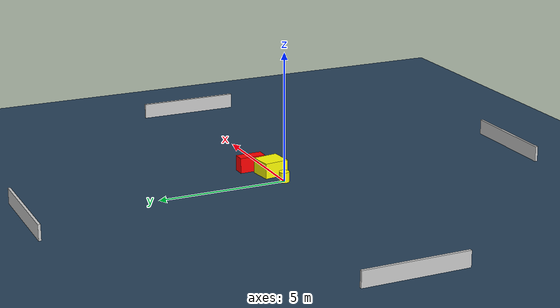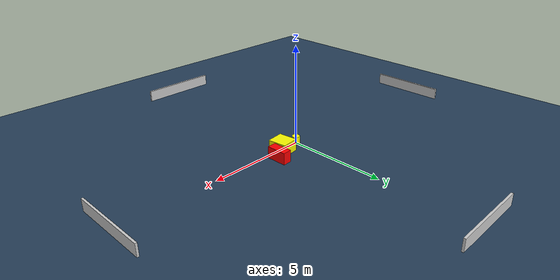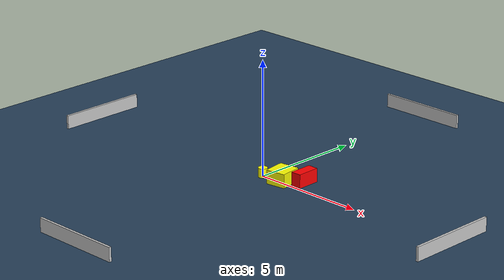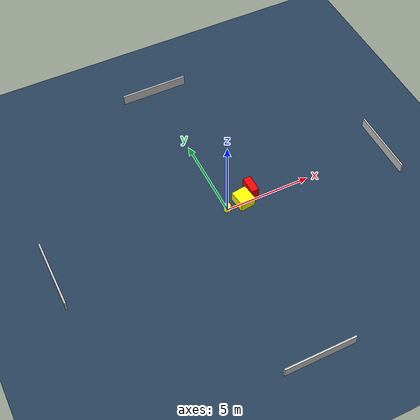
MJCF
<?xml version="1.0" ?>
<mujoco model="generated_environment">
  <option timestep="0.01" integrator="RK4" cone="elliptic"/>
  <default>
    <geom density="1"/>
  </default>
  <asset>
    <texture builtin="gradient" height="3072" name="skybox" rgb1="0.3 0.5 0.7" rgb2="0 0 0" type="skybox" width="512"/>
    <texture builtin="checker" height="300" name="groundplane" rgb1="0.2 0.3 0.4" rgb2="0.1 0.2 0.3" type="2d" width="300"/>
    <material name="groundplane" reflectance="0.2" texrepeat="5 5" texture="groundplane"/>
  </asset>
  <worldbody>
    <light dir="0 0 -1" directional="true" pos="0 0 1.5"/>
    <geom condim="3" friction="0.5 0.005 0.001" material="groundplane" name="floor" pos="0 0 0" size="0 0 0.05" type="plane"/>
    <body name="walls">
      <geom name="wall_1" condim="4" pos="-10.0 0.0 0.3" rgba="0.800000011920929 0.800000011920929 0.800000011920929 1.0" size="0.05 2.0 0.3" type="box"/>
      <geom name="wall_2" condim="4" pos="10.0 0.0 0.3" rgba="0.800000011920929 0.800000011920929 0.800000011920929 1.0" size="0.05 2.0 0.3" type="box"/>
      <geom name="wall_3" condim="4" pos="0.0 -10.0 0.3" rgba="0.800000011920929 0.800000011920929 0.800000011920929 1.0" size="2.0 0.05 0.3" type="box"/>
      <geom name="wall_4" condim="4" pos="0.0 10.0 0.3" rgba="0.800000011920929 0.800000011920929 0.800000011920929 1.0" size="2.0 0.05 0.3" type="box"/>
    </body>
    <body name="robot">
      <joint name="joint_x" type="slide" pos="0 0 0" axis="1 0 0"/>
      <joint name="joint_y" type="slide" pos="0 0 0" axis="0 1 0"/>
      <geom name="robot" type="cylinder" pos="0.0 0.0 0.2" size="0.2 0.2 0.0" mass="5.0" friction="1.0 0.005 0.0001" condim="4" rgba="1.0 1.0 0.0 1.0"/>
    </body>
    <body name="obstacle_1_movable">
      <geom name="obstacle_1_movable" condim="4" pos="1.0238473098424592 0.09011743625622141 0.3" euler="0 0 187.2222015389443" friction="0.0 0.005 0.001" rgba="1.0 1.0 0.0 1.0" size="0.44299174017521886 0.48364050938640984 0.3" type="box" mass="0.1"/>
      <joint type="free"/>
    </body>
    <body name="obstacle_2_static">
      <geom name="obstacle_2_static" condim="4" pos="1.7573347171381346 0.6158592323051502 0.3" euler="0 0 180.83544409332555" friction="0.0 0.005 0.001" rgba="1.0 0.0 0.0 1.0" size="0.22500907535125303 0.51164310455379 0.3" type="box"/>
    </body>
  </worldbody>
  <actuator>
    <motor name="actuator_x" joint="joint_x" gear="1" ctrlrange="-1 1"/>
    <motor name="actuator_y" joint="joint_y" gear="1" ctrlrange="-1 1"/>
  </actuator>
</mujoco>
